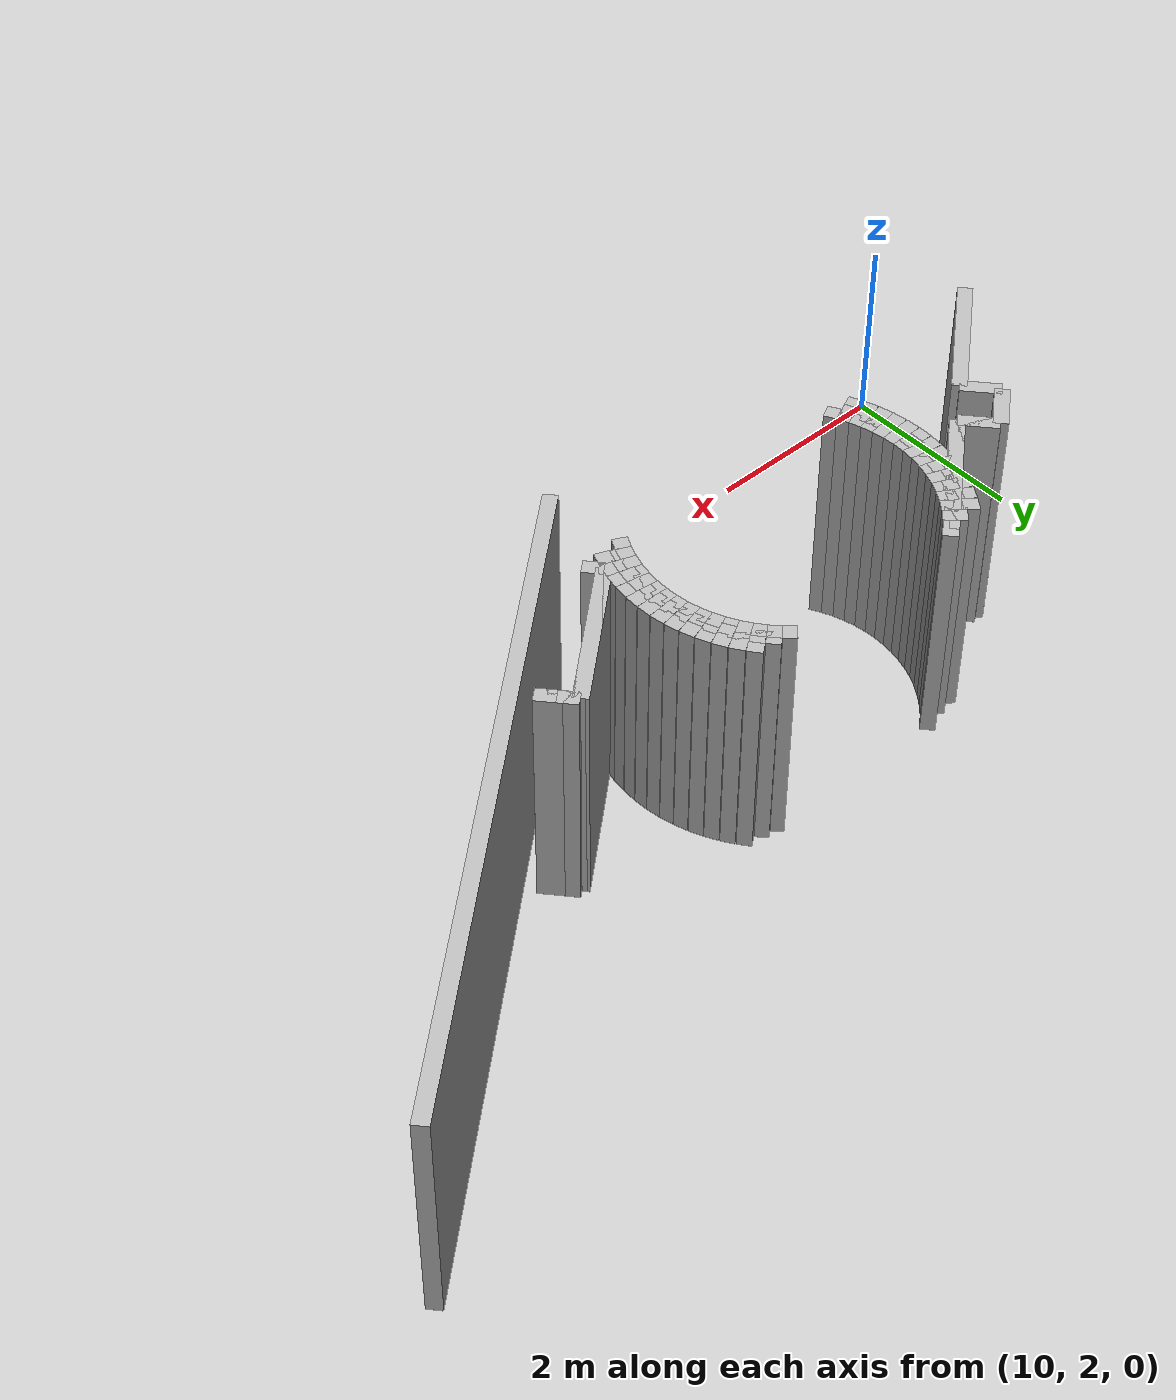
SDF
<sdf version="1.6">
 <model name="sps_1000">
  <static>1</static>
  <allow_auto_disable>0</allow_auto_disable>
  <link name="Wall468">
   <collision name="collision"><geometry><box><size>0.400191 0.15 2.5</size></box></geometry></collision>
   <visual name="visual">
    <geometry><box><size>0.400191 0.15 2.5</size></box></geometry>
    <transparency>0.0</transparency>
   </visual>
   <pose>11.2367 4.51289 1.25 0 -0 2.28042</pose>
  </link>
  <link name="Wall761">
   <collision name="collision"><geometry><box><size>0.499785 0.15 2.5</size></box></geometry></collision>
   <visual name="visual">
    <geometry><box><size>0.499785 0.15 2.5</size></box></geometry>
    <transparency>0.0</transparency>
   </visual>
   <pose>11.2959 4.8275 1.25 0 -0 0.709593</pose>
  </link>
  <link name="Wall1087">
   <collision name="collision"><geometry><box><size>1.60021 0.15 2.5</size></box></geometry></collision>
   <visual name="visual">
    <geometry><box><size>1.60021 0.15 2.5</size></box></geometry>
    <transparency>0.0</transparency>
   </visual>
   <pose>16.1283 4.49721 1.25 0 -0 0.709917</pose>
  </link>
  <link name="Wall1980">
   <collision name="collision"><geometry><box><size>1.50006 0.15 2.5</size></box></geometry></collision>
   <visual name="visual">
    <geometry><box><size>1.50006 0.15 2.5</size></box></geometry>
    <transparency>0.0</transparency>
   </visual>
   <pose>10.7981 3.87248 1.25 0 -0 0.709831</pose>
  </link>
  <link name="Wall2314">
   <collision name="collision"><geometry><box><size>0.399933 0.15 2.5</size></box></geometry></collision>
   <visual name="visual">
    <geometry><box><size>0.399933 0.15 2.5</size></box></geometry>
    <transparency>0.0</transparency>
   </visual>
   <pose>11.616 4.83861 1.25 0 -0 2.28037</pose>
  </link>
  <link name="Wall7676">
   <collision name="collision"><geometry><box><size>1.49994 0.15 2.5</size></box></geometry></collision>
   <visual name="visual">
    <geometry><box><size>1.49994 0.15 2.5</size></box></geometry>
    <transparency>0.0</transparency>
   </visual>
   <pose>10.7981 3.87239 1.25 0 -0 0.709739</pose>
  </link>
  <link name="Wall7677">
   <collision name="collision"><geometry><box><size>0.400191 0.15 2.5</size></box></geometry></collision>
   <visual name="visual">
    <geometry><box><size>0.400191 0.15 2.5</size></box></geometry>
    <transparency>0.0</transparency>
   </visual>
   <pose>11.2367 4.51289 1.25 0 -0 2.28042</pose>
  </link>
  <link name="Wall7678">
   <collision name="collision"><geometry><box><size>0.49997 0.15 2.5</size></box></geometry></collision>
   <visual name="visual">
    <geometry><box><size>0.49997 0.15 2.5</size></box></geometry>
    <transparency>0.0</transparency>
   </visual>
   <pose>11.296 4.8275 1.25 0 -0 0.709275</pose>
  </link>
  <link name="Wall7679">
   <collision name="collision"><geometry><box><size>0.399794 0.15 2.5</size></box></geometry></collision>
   <visual name="visual">
    <geometry><box><size>0.399794 0.15 2.5</size></box></geometry>
    <transparency>0.0</transparency>
   </visual>
   <pose>11.616 4.8387 1.25 0 0 -0.860928</pose>
  </link>
  <link name="Wall7680">
   <collision name="collision"><geometry><box><size>1.60011 0.15 2.5</size></box></geometry></collision>
   <visual name="visual">
    <geometry><box><size>1.60011 0.15 2.5</size></box></geometry>
    <transparency>0.0</transparency>
   </visual>
   <pose>12.353 5.2086 1.25 0 -0 0.710021</pose>
  </link>
  <link name="Wall7695">
   <collision name="collision"><geometry><box><size>0.399489 0.15 2.5</size></box></geometry></collision>
   <visual name="visual">
    <geometry><box><size>0.399489 0.15 2.5</size></box></geometry>
    <transparency>0.0</transparency>
   </visual>
   <pose>16.8653 4.8672 1.25 0 -0 2.28072</pose>
  </link>
  <link name="Wall7696">
   <collision name="collision"><geometry><box><size>1.60023 0.15 2.5</size></box></geometry></collision>
   <visual name="visual">
    <geometry><box><size>1.60023 0.15 2.5</size></box></geometry>
    <transparency>0.0</transparency>
   </visual>
   <pose>16.1282 4.4973 1.25 0 0 -2.43184</pose>
  </link>
  <link name="Wall9813">
   <collision name="collision"><geometry><box><size>0.130763 0.15 2.5</size></box></geometry></collision>
   <visual name="visual">
    <geometry><box><size>0.130763 0.15 2.5</size></box></geometry>
    <transparency>0.0</transparency>
   </visual>
   <pose>14.8736 5.63148 1.25 0 0 -0.742148</pose>
  </link>
  <link name="Wall9814">
   <collision name="collision"><geometry><box><size>0.130984 0.15 2.5</size></box></geometry></collision>
   <visual name="visual">
    <geometry><box><size>0.130984 0.15 2.5</size></box></geometry>
    <transparency>0.0</transparency>
   </visual>
   <pose>14.9661 5.53899 1.25 0 0 -0.829565</pose>
  </link>
  <link name="Wall9815">
   <collision name="collision"><geometry><box><size>0.130881 0.15 2.5</size></box></geometry></collision>
   <visual name="visual">
    <geometry><box><size>0.130881 0.15 2.5</size></box></geometry>
    <transparency>0.0</transparency>
   </visual>
   <pose>15.0502 5.4388 1.25 0 0 -0.915357</pose>
  </link>
  <link name="Wall9816">
   <collision name="collision"><geometry><box><size>0.130834 0.15 2.5</size></box></geometry></collision>
   <visual name="visual">
    <geometry><box><size>0.130834 0.15 2.5</size></box></geometry>
    <transparency>0.0</transparency>
   </visual>
   <pose>15.1251 5.33171 1.25 0 0 -1.00453</pose>
  </link>
  <link name="Wall9817">
   <collision name="collision"><geometry><box><size>0.130819 0.15 2.5</size></box></geometry></collision>
   <visual name="visual">
    <geometry><box><size>0.130819 0.15 2.5</size></box></geometry>
    <transparency>0.0</transparency>
   </visual>
   <pose>15.1905 5.21849 1.25 0 0 -1.09066</pose>
  </link>
  <link name="Wall9818">
   <collision name="collision"><geometry><box><size>0.130893 0.15 2.5</size></box></geometry></collision>
   <visual name="visual">
    <geometry><box><size>0.130893 0.15 2.5</size></box></geometry>
    <transparency>0.0</transparency>
   </visual>
   <pose>15.2457 5.09999 1.25 0 0 -1.17895</pose>
  </link>
  <link name="Wall9819">
   <collision name="collision"><geometry><box><size>0.130896 0.15 2.5</size></box></geometry></collision>
   <visual name="visual">
    <geometry><box><size>0.130896 0.15 2.5</size></box></geometry>
    <transparency>0.0</transparency>
   </visual>
   <pose>15.2904 4.9771 1.25 0 0 -1.26482</pose>
  </link>
  <link name="Wall9820">
   <collision name="collision"><geometry><box><size>0.130881 0.15 2.5</size></box></geometry></collision>
   <visual name="visual">
    <geometry><box><size>0.130881 0.15 2.5</size></box></geometry>
    <transparency>0.0</transparency>
   </visual>
   <pose>15.3242 4.85078 1.25 0 0 -1.35364</pose>
  </link>
  <link name="Wall9821">
   <collision name="collision"><geometry><box><size>0.130865 0.15 2.5</size></box></geometry></collision>
   <visual name="visual">
    <geometry><box><size>0.130865 0.15 2.5</size></box></geometry>
    <transparency>0.0</transparency>
   </visual>
   <pose>15.3468 4.722 1.25 0 0 -1.44077</pose>
  </link>
  <link name="Wall9822">
   <collision name="collision"><geometry><box><size>0.130744 0.15 2.5</size></box></geometry></collision>
   <visual name="visual">
    <geometry><box><size>0.130744 0.15 2.5</size></box></geometry>
    <transparency>0.0</transparency>
   </visual>
   <pose>15.3581 4.59181 1.25 0 0 -1.52643</pose>
  </link>
  <link name="Wall9823">
   <collision name="collision"><geometry><box><size>0.130927 0.15 2.5</size></box></geometry></collision>
   <visual name="visual">
    <geometry><box><size>0.130927 0.15 2.5</size></box></geometry>
    <transparency>0.0</transparency>
   </visual>
   <pose>15.3581 4.4611 1.25 0 0 -1.6151</pose>
  </link>
  <link name="Wall9824">
   <collision name="collision"><geometry><box><size>0.130776 0.15 2.5</size></box></geometry></collision>
   <visual name="visual">
    <geometry><box><size>0.130776 0.15 2.5</size></box></geometry>
    <transparency>0.0</transparency>
   </visual>
   <pose>15.3466 4.33089 1.25 0 0 -1.70279</pose>
  </link>
  <link name="Wall9825">
   <collision name="collision"><geometry><box><size>0.13106 0.15 2.5</size></box></geometry></collision>
   <visual name="visual">
    <geometry><box><size>0.13106 0.15 2.5</size></box></geometry>
    <transparency>0.0</transparency>
   </visual>
   <pose>15.3239 4.20207 1.25 0 0 -1.78765</pose>
  </link>
  <link name="Wall9826">
   <collision name="collision"><geometry><box><size>0.130701 0.15 2.5</size></box></geometry></collision>
   <visual name="visual">
    <geometry><box><size>0.130701 0.15 2.5</size></box></geometry>
    <transparency>0.0</transparency>
   </visual>
   <pose>15.2901 4.07579 1.25 0 0 -1.87822</pose>
  </link>
  <link name="Wall9827">
   <collision name="collision"><geometry><box><size>0.130973 0.15 2.5</size></box></geometry></collision>
   <visual name="visual">
    <geometry><box><size>0.130973 0.15 2.5</size></box></geometry>
    <transparency>0.0</transparency>
   </visual>
   <pose>15.2453 3.95299 1.25 0 0 -1.9629</pose>
  </link>
  <link name="Wall9828">
   <collision name="collision"><geometry><box><size>0.130737 0.15 2.5</size></box></geometry></collision>
   <visual name="visual">
    <geometry><box><size>0.130737 0.15 2.5</size></box></geometry>
    <transparency>0.0</transparency>
   </visual>
   <pose>15.1901 3.83449 1.25 0 0 -2.05073</pose>
  </link>
  <link name="Wall9853">
   <collision name="collision"><geometry><box><size>0.130765 0.15 2.5</size></box></geometry></collision>
   <visual name="visual">
    <geometry><box><size>0.130765 0.15 2.5</size></box></geometry>
    <transparency>0.0</transparency>
   </visual>
   <pose>12.5315 3.83528 1.25 0 -0 2.05114</pose>
  </link>
  <link name="Wall9854">
   <collision name="collision"><geometry><box><size>0.130949 0.15 2.5</size></box></geometry></collision>
   <visual name="visual">
    <geometry><box><size>0.130949 0.15 2.5</size></box></geometry>
    <transparency>0.0</transparency>
   </visual>
   <pose>12.4762 3.95378 1.25 0 -0 1.96247</pose>
  </link>
  <link name="Wall9855">
   <collision name="collision"><geometry><box><size>0.130896 0.15 2.5</size></box></geometry></collision>
   <visual name="visual">
    <geometry><box><size>0.130896 0.15 2.5</size></box></geometry>
    <transparency>0.0</transparency>
   </visual>
   <pose>12.4315 4.0767 1.25 0 -0 1.87677</pose>
  </link>
  <link name="Wall9856">
   <collision name="collision"><geometry><box><size>0.130881 0.15 2.5</size></box></geometry></collision>
   <visual name="visual">
    <geometry><box><size>0.130881 0.15 2.5</size></box></geometry>
    <transparency>0.0</transparency>
   </visual>
   <pose>12.3977 4.20302 1.25 0 -0 1.78795</pose>
  </link>
  <link name="Wall9857">
   <collision name="collision"><geometry><box><size>0.130708 0.15 2.5</size></box></geometry></collision>
   <visual name="visual">
    <geometry><box><size>0.130708 0.15 2.5</size></box></geometry>
    <transparency>0.0</transparency>
   </visual>
   <pose>12.3751 4.33171 1.25 0 -0 1.70239</pose>
  </link>
  <link name="Wall9858">
   <collision name="collision"><geometry><box><size>0.130919 0.15 2.5</size></box></geometry></collision>
   <visual name="visual">
    <geometry><box><size>0.130919 0.15 2.5</size></box></geometry>
    <transparency>0.0</transparency>
   </visual>
   <pose>12.3637 4.4619 1.25 0 -0 1.6137</pose>
  </link>
  <link name="Wall9859">
   <collision name="collision"><geometry><box><size>0.130927 0.15 2.5</size></box></geometry></collision>
   <visual name="visual">
    <geometry><box><size>0.130927 0.15 2.5</size></box></geometry>
    <transparency>0.0</transparency>
   </visual>
   <pose>12.3638 4.5927 1.25 0 -0 1.52649</pose>
  </link>
  <link name="Wall9860">
   <collision name="collision"><geometry><box><size>0.130684 0.15 2.5</size></box></geometry></collision>
   <visual name="visual">
    <geometry><box><size>0.130684 0.15 2.5</size></box></geometry>
    <transparency>0.0</transparency>
   </visual>
   <pose>12.3751 4.72288 1.25 0 -0 1.44059</pose>
  </link>
  <link name="Wall9861">
   <collision name="collision"><geometry><box><size>0.130934 0.15 2.5</size></box></geometry></collision>
   <visual name="visual">
    <geometry><box><size>0.130934 0.15 2.5</size></box></geometry>
    <transparency>0.0</transparency>
   </visual>
   <pose>12.3978 4.85158 1.25 0 -0 1.35182</pose>
  </link>
  <link name="Wall9862">
   <collision name="collision"><geometry><box><size>0.130878 0.15 2.5</size></box></geometry></collision>
   <visual name="visual">
    <geometry><box><size>0.130878 0.15 2.5</size></box></geometry>
    <transparency>0.0</transparency>
   </visual>
   <pose>12.4318 4.97789 1.25 0 -0 1.26527</pose>
  </link>
  <link name="Wall9863">
   <collision name="collision"><geometry><box><size>0.130986 0.15 2.5</size></box></geometry></collision>
   <visual name="visual">
    <geometry><box><size>0.130986 0.15 2.5</size></box></geometry>
    <transparency>0.0</transparency>
   </visual>
   <pose>12.4766 5.10078 1.25 0 -0 1.17722</pose>
  </link>
  <link name="Wall9864">
   <collision name="collision"><geometry><box><size>0.130791 0.15 2.5</size></box></geometry></collision>
   <visual name="visual">
    <geometry><box><size>0.130791 0.15 2.5</size></box></geometry>
    <transparency>0.0</transparency>
   </visual>
   <pose>12.5319 5.21928 1.25 0 -0 1.09108</pose>
  </link>
  <link name="Wall9865">
   <collision name="collision"><geometry><box><size>0.130966 0.15 2.5</size></box></geometry></collision>
   <visual name="visual">
    <geometry><box><size>0.130966 0.15 2.5</size></box></geometry>
    <transparency>0.0</transparency>
   </visual>
   <pose>12.5973 5.3325 1.25 0 -0 1.00296</pose>
  </link>
  <link name="Wall9866">
   <collision name="collision"><geometry><box><size>0.130769 0.15 2.5</size></box></geometry></collision>
   <visual name="visual">
    <geometry><box><size>0.130769 0.15 2.5</size></box></geometry>
    <transparency>0.0</transparency>
   </visual>
   <pose>12.6723 5.43959 1.25 0 -0 0.916467</pose>
  </link>
  <link name="Wall9867">
   <collision name="collision"><geometry><box><size>0.130808 0.15 2.5</size></box></geometry></collision>
   <visual name="visual">
    <geometry><box><size>0.130808 0.15 2.5</size></box></geometry>
    <transparency>0.0</transparency>
   </visual>
   <pose>12.7562 5.53969 1.25 0 -0 0.828964</pose>
  </link>
  <link name="Wall15297">
   <collision name="collision"><geometry><box><size>0.137845 0.15 2.5</size></box></geometry></collision>
   <visual name="visual">
    <geometry><box><size>0.137845 0.15 2.5</size></box></geometry>
    <transparency>0.0</transparency>
   </visual>
   <pose>15.0253 5.59309 1.25 0 0 -0.828305</pose>
  </link>
  <link name="Wall15298">
   <collision name="collision"><geometry><box><size>0.137836 0.15 2.5</size></box></geometry></collision>
   <visual name="visual">
    <geometry><box><size>0.137836 0.15 2.5</size></box></geometry>
    <transparency>0.0</transparency>
   </visual>
   <pose>15.1138 5.48759 1.25 0 0 -0.917288</pose>
  </link>
  <link name="Wall15299">
   <collision name="collision"><geometry><box><size>0.137912 0.15 2.5</size></box></geometry></collision>
   <visual name="visual">
    <geometry><box><size>0.137912 0.15 2.5</size></box></geometry>
    <transparency>0.0</transparency>
   </visual>
   <pose>15.1926 5.37468 1.25 0 0 -1.00464</pose>
  </link>
  <link name="Wall15300">
   <collision name="collision"><geometry><box><size>0.137753 0.15 2.5</size></box></geometry></collision>
   <visual name="visual">
    <geometry><box><size>0.137753 0.15 2.5</size></box></geometry>
    <transparency>0.0</transparency>
   </visual>
   <pose>15.2614 5.25539 1.25 0 0 -1.0909</pose>
  </link>
  <link name="Wall15301">
   <collision name="collision"><geometry><box><size>0.137888 0.15 2.5</size></box></geometry></collision>
   <visual name="visual">
    <geometry><box><size>0.137888 0.15 2.5</size></box></geometry>
    <transparency>0.0</transparency>
   </visual>
   <pose>15.3196 5.1306 1.25 0 0 -1.17788</pose>
  </link>
  <link name="Wall15302">
   <collision name="collision"><geometry><box><size>0.137789 0.15 2.5</size></box></geometry></collision>
   <visual name="visual">
    <geometry><box><size>0.137789 0.15 2.5</size></box></geometry>
    <transparency>0.0</transparency>
   </visual>
   <pose>15.3668 5.0012 1.25 0 0 -1.2653</pose>
  </link>
  <link name="Wall15303">
   <collision name="collision"><geometry><box><size>0.137839 0.15 2.5</size></box></geometry></collision>
   <visual name="visual">
    <geometry><box><size>0.137839 0.15 2.5</size></box></geometry>
    <transparency>0.0</transparency>
   </visual>
   <pose>15.4024 4.86821 1.25 0 0 -1.35299</pose>
  </link>
  <link name="Wall15304">
   <collision name="collision"><geometry><box><size>0.13802 0.15 2.5</size></box></geometry></collision>
   <visual name="visual">
    <geometry><box><size>0.13802 0.15 2.5</size></box></geometry>
    <transparency>0.0</transparency>
   </visual>
   <pose>15.4263 4.7325 1.25 0 0 -1.43997</pose>
  </link>
  <link name="Wall15305">
   <collision name="collision"><geometry><box><size>0.137703 0.15 2.5</size></box></geometry></collision>
   <visual name="visual">
    <geometry><box><size>0.137703 0.15 2.5</size></box></geometry>
    <transparency>0.0</transparency>
   </visual>
   <pose>15.4383 4.59529 1.25 0 0 -1.52735</pose>
  </link>
  <link name="Wall15306">
   <collision name="collision"><geometry><box><size>0.137955 0.15 2.5</size></box></geometry></collision>
   <visual name="visual">
    <geometry><box><size>0.137955 0.15 2.5</size></box></geometry>
    <transparency>0.0</transparency>
   </visual>
   <pose>15.4382 4.45759 1.25 0 0 -1.6155</pose>
  </link>
  <link name="Wall15307">
   <collision name="collision"><geometry><box><size>0.137778 0.15 2.5</size></box></geometry></collision>
   <visual name="visual">
    <geometry><box><size>0.137778 0.15 2.5</size></box></geometry>
    <transparency>0.0</transparency>
   </visual>
   <pose>15.4261 4.32039 1.25 0 0 -1.70185</pose>
  </link>
  <link name="Wall15308">
   <collision name="collision"><geometry><box><size>0.137852 0.15 2.5</size></box></geometry></collision>
   <visual name="visual">
    <geometry><box><size>0.137852 0.15 2.5</size></box></geometry>
    <transparency>0.0</transparency>
   </visual>
   <pose>15.4022 4.1848 1.25 0 0 -1.78903</pose>
  </link>
  <link name="Wall15309">
   <collision name="collision"><geometry><box><size>0.137826 0.15 2.5</size></box></geometry></collision>
   <visual name="visual">
    <geometry><box><size>0.137826 0.15 2.5</size></box></geometry>
    <transparency>0.0</transparency>
   </visual>
   <pose>15.3664 4.0518 1.25 0 0 -1.87714</pose>
  </link>
  <link name="Wall15310">
   <collision name="collision"><geometry><box><size>0.137888 0.15 2.5</size></box></geometry></collision>
   <visual name="visual">
    <geometry><box><size>0.137888 0.15 2.5</size></box></geometry>
    <transparency>0.0</transparency>
   </visual>
   <pose>15.3193 3.92241 1.25 0 0 -1.96371</pose>
  </link>
  <link name="Wall15337">
   <collision name="collision"><geometry><box><size>0.137888 0.15 2.5</size></box></geometry></collision>
   <visual name="visual">
    <geometry><box><size>0.137888 0.15 2.5</size></box></geometry>
    <transparency>0.0</transparency>
   </visual>
   <pose>12.4023 3.9232 1.25 0 -0 1.96371</pose>
  </link>
  <link name="Wall15338">
   <collision name="collision"><geometry><box><size>0.137789 0.15 2.5</size></box></geometry></collision>
   <visual name="visual">
    <geometry><box><size>0.137789 0.15 2.5</size></box></geometry>
    <transparency>0.0</transparency>
   </visual>
   <pose>12.3552 4.0526 1.25 0 -0 1.8763</pose>
  </link>
  <link name="Wall15339">
   <collision name="collision"><geometry><box><size>0.137839 0.15 2.5</size></box></geometry></collision>
   <visual name="visual">
    <geometry><box><size>0.137839 0.15 2.5</size></box></geometry>
    <transparency>0.0</transparency>
   </visual>
   <pose>12.3195 4.18559 1.25 0 -0 1.7886</pose>
  </link>
  <link name="Wall15340">
   <collision name="collision"><geometry><box><size>0.13796 0.15 2.5</size></box></geometry></collision>
   <visual name="visual">
    <geometry><box><size>0.13796 0.15 2.5</size></box></geometry>
    <transparency>0.0</transparency>
   </visual>
   <pose>12.2956 4.32127 1.25 0 -0 1.70168</pose>
  </link>
  <link name="Wall15341">
   <collision name="collision"><geometry><box><size>0.137756 0.15 2.5</size></box></geometry></collision>
   <visual name="visual">
    <geometry><box><size>0.137756 0.15 2.5</size></box></geometry>
    <transparency>0.0</transparency>
   </visual>
   <pose>12.2837 4.45848 1.25 0 -0 1.6129</pose>
  </link>
  <link name="Wall15342">
   <collision name="collision"><geometry><box><size>0.137947 0.15 2.5</size></box></geometry></collision>
   <visual name="visual">
    <geometry><box><size>0.137947 0.15 2.5</size></box></geometry>
    <transparency>0.0</transparency>
   </visual>
   <pose>12.2838 4.59621 1.25 0 -0 1.52742</pose>
  </link>
  <link name="Wall15343">
   <collision name="collision"><geometry><box><size>0.137778 0.15 2.5</size></box></geometry></collision>
   <visual name="visual">
    <geometry><box><size>0.137778 0.15 2.5</size></box></geometry>
    <transparency>0.0</transparency>
   </visual>
   <pose>12.2958 4.73341 1.25 0 -0 1.43974</pose>
  </link>
  <link name="Wall15344">
   <collision name="collision"><geometry><box><size>0.137852 0.15 2.5</size></box></geometry></collision>
   <visual name="visual">
    <geometry><box><size>0.137852 0.15 2.5</size></box></geometry>
    <transparency>0.0</transparency>
   </visual>
   <pose>12.3198 4.869 1.25 0 -0 1.35256</pose>
  </link>
  <link name="Wall15345">
   <collision name="collision"><geometry><box><size>0.138 0.15 2.5</size></box></geometry></collision>
   <visual name="visual">
    <geometry><box><size>0.138 0.15 2.5</size></box></geometry>
    <transparency>0.0</transparency>
   </visual>
   <pose>12.3555 5.00209 1.25 0 -0 1.26485</pose>
  </link>
  <link name="Wall15346">
   <collision name="collision"><geometry><box><size>0.137719 0.15 2.5</size></box></geometry></collision>
   <visual name="visual">
    <geometry><box><size>0.137719 0.15 2.5</size></box></geometry>
    <transparency>0.0</transparency>
   </visual>
   <pose>12.4026 5.13148 1.25 0 -0 1.17737</pose>
  </link>
  <link name="Wall15347">
   <collision name="collision"><geometry><box><size>0.137753 0.15 2.5</size></box></geometry></collision>
   <visual name="visual">
    <geometry><box><size>0.137753 0.15 2.5</size></box></geometry>
    <transparency>0.0</transparency>
   </visual>
   <pose>12.4608 5.25618 1.25 0 -0 1.0909</pose>
  </link>
  <link name="Wall15348">
   <collision name="collision"><geometry><box><size>0.138043 0.15 2.5</size></box></geometry></collision>
   <visual name="visual">
    <geometry><box><size>0.138043 0.15 2.5</size></box></geometry>
    <transparency>0.0</transparency>
   </visual>
   <pose>12.5297 5.37547 1.25 0 -0 1.00315</pose>
  </link>
  <link name="Wall15349">
   <collision name="collision"><geometry><box><size>0.137803 0.15 2.5</size></box></geometry></collision>
   <visual name="visual">
    <geometry><box><size>0.137803 0.15 2.5</size></box></geometry>
    <transparency>0.0</transparency>
   </visual>
   <pose>12.6088 5.4883 1.25 0 -0 0.915425</pose>
  </link>
  <link name="Wall15350">
   <collision name="collision"><geometry><box><size>0.137857 0.15 2.5</size></box></geometry></collision>
   <visual name="visual">
    <geometry><box><size>0.137857 0.15 2.5</size></box></geometry>
    <transparency>0.0</transparency>
   </visual>
   <pose>12.6973 5.59379 1.25 0 -0 0.830182</pose>
  </link>
  <link name="Wall15374">
   <collision name="collision"><geometry><box><size>6.95165 0.15 2.5</size></box></geometry></collision>
   <visual name="visual">
    <geometry><box><size>6.95165 0.15 2.5</size></box></geometry>
    <transparency>0.0</transparency>
   </visual>
   <pose>17.8659 5.19987 1.25 0 -0 0.709976</pose>
  </link>
  <link name="Wall21901">
   <collision name="collision"><geometry><box><size>0.14829 0.15 2.5</size></box></geometry></collision>
   <visual name="visual">
    <geometry><box><size>0.14829 0.15 2.5</size></box></geometry>
    <transparency>0.0</transparency>
   </visual>
   <pose>15.2089 5.5605 1.25 0 0 -0.915276</pose>
  </link>
  <link name="Wall21902">
   <collision name="collision"><geometry><box><size>0.148394 0.15 2.5</size></box></geometry></collision>
   <visual name="visual">
    <geometry><box><size>0.148394 0.15 2.5</size></box></geometry>
    <transparency>0.0</transparency>
   </visual>
   <pose>15.2938 5.4391 1.25 0 0 -1.0047</pose>
  </link>
  <link name="Wall21903">
   <collision name="collision"><geometry><box><size>0.148154 0.15 2.5</size></box></geometry></collision>
   <visual name="visual">
    <geometry><box><size>0.148154 0.15 2.5</size></box></geometry>
    <transparency>0.0</transparency>
   </visual>
   <pose>15.3679 5.31077 1.25 0 0 -1.09075</pose>
  </link>
  <link name="Wall21904">
   <collision name="collision"><geometry><box><size>0.148508 0.15 2.5</size></box></geometry></collision>
   <visual name="visual">
    <geometry><box><size>0.148508 0.15 2.5</size></box></geometry>
    <transparency>0.0</transparency>
   </visual>
   <pose>15.4305 5.17647 1.25 0 0 -1.17815</pose>
  </link>
  <link name="Wall21905">
   <collision name="collision"><geometry><box><size>0.148213 0.15 2.5</size></box></geometry></collision>
   <visual name="visual">
    <geometry><box><size>0.148213 0.15 2.5</size></box></geometry>
    <transparency>0.0</transparency>
   </visual>
   <pose>15.4812 5.03718 1.25 0 0 -1.26545</pose>
  </link>
  <link name="Wall21906">
   <collision name="collision"><geometry><box><size>0.148339 0.15 2.5</size></box></geometry></collision>
   <visual name="visual">
    <geometry><box><size>0.148339 0.15 2.5</size></box></geometry>
    <transparency>0.0</transparency>
   </visual>
   <pose>15.5195 4.89409 1.25 0 0 -1.35306</pose>
  </link>
  <link name="Wall21907">
   <collision name="collision"><geometry><box><size>0.148241 0.15 2.5</size></box></geometry></collision>
   <visual name="visual">
    <geometry><box><size>0.148241 0.15 2.5</size></box></geometry>
    <transparency>0.0</transparency>
   </visual>
   <pose>15.5452 4.74818 1.25 0 0 -1.4399</pose>
  </link>
  <link name="Wall21908">
   <collision name="collision"><geometry><box><size>0.148332 0.15 2.5</size></box></geometry></collision>
   <visual name="visual">
    <geometry><box><size>0.148332 0.15 2.5</size></box></geometry>
    <transparency>0.0</transparency>
   </visual>
   <pose>15.558 4.6006 1.25 0 0 -1.52758</pose>
  </link>
  <link name="Wall21909">
   <collision name="collision"><geometry><box><size>0.14834 0.15 2.5</size></box></geometry></collision>
   <visual name="visual">
    <geometry><box><size>0.14834 0.15 2.5</size></box></geometry>
    <transparency>0.0</transparency>
   </visual>
   <pose>15.5579 4.45241 1.25 0 0 -1.61525</pose>
  </link>
  <link name="Wall21910">
   <collision name="collision"><geometry><box><size>0.148309 0.15 2.5</size></box></geometry></collision>
   <visual name="visual">
    <geometry><box><size>0.148309 0.15 2.5</size></box></geometry>
    <transparency>0.0</transparency>
   </visual>
   <pose>15.5449 4.30479 1.25 0 0 -1.70204</pose>
  </link>
  <link name="Wall21911">
   <collision name="collision"><geometry><box><size>0.148484 0.15 2.5</size></box></geometry></collision>
   <visual name="visual">
    <geometry><box><size>0.148484 0.15 2.5</size></box></geometry>
    <transparency>0.0</transparency>
   </visual>
   <pose>15.5192 4.1588 1.25 0 0 -1.78915</pose>
  </link>
  <link name="Wall21912">
   <collision name="collision"><geometry><box><size>0.14829 0.15 2.5</size></box></geometry></collision>
   <visual name="visual">
    <geometry><box><size>0.14829 0.15 2.5</size></box></geometry>
    <transparency>0.0</transparency>
   </visual>
   <pose>15.4808 4.01561 1.25 0 0 -1.87641</pose>
  </link>
  <link name="Wall21913">
   <collision name="collision"><geometry><box><size>0.148339 0.15 2.5</size></box></geometry></collision>
   <visual name="visual">
    <geometry><box><size>0.148339 0.15 2.5</size></box></geometry>
    <transparency>0.0</transparency>
   </visual>
   <pose>15.43 3.87639 1.25 0 0 -1.96391</pose>
  </link>
  <link name="Wall21940">
   <collision name="collision"><geometry><box><size>0.148485 0.15 2.5</size></box></geometry></collision>
   <visual name="visual">
    <geometry><box><size>0.148485 0.15 2.5</size></box></geometry>
    <transparency>0.0</transparency>
   </visual>
   <pose>12.2915 3.87727 1.25 0 -0 1.96306</pose>
  </link>
  <link name="Wall21941">
   <collision name="collision"><geometry><box><size>0.148235 0.15 2.5</size></box></geometry></collision>
   <visual name="visual">
    <geometry><box><size>0.148235 0.15 2.5</size></box></geometry>
    <transparency>0.0</transparency>
   </visual>
   <pose>12.2409 4.01659 1.25 0 -0 1.87523</pose>
  </link>
  <link name="Wall21942">
   <collision name="collision"><geometry><box><size>0.148306 0.15 2.5</size></box></geometry></collision>
   <visual name="visual">
    <geometry><box><size>0.148306 0.15 2.5</size></box></geometry>
    <transparency>0.0</transparency>
   </visual>
   <pose>12.2026 4.15968 1.25 0 -0 1.78942</pose>
  </link>
  <link name="Wall21943">
   <collision name="collision"><geometry><box><size>0.148467 0.15 2.5</size></box></geometry></collision>
   <visual name="visual">
    <geometry><box><size>0.148467 0.15 2.5</size></box></geometry>
    <transparency>0.0</transparency>
   </visual>
   <pose>12.1769 4.30568 1.25 0 -0 1.70066</pose>
  </link>
  <link name="Wall21944">
   <collision name="collision"><geometry><box><size>0.148332 0.15 2.5</size></box></geometry></collision>
   <visual name="visual">
    <geometry><box><size>0.148332 0.15 2.5</size></box></geometry>
    <transparency>0.0</transparency>
   </visual>
   <pose>12.1641 4.45338 1.25 0 -0 1.61401</pose>
  </link>
  <link name="Wall21945">
   <collision name="collision"><geometry><box><size>0.148332 0.15 2.5</size></box></geometry></collision>
   <visual name="visual">
    <geometry><box><size>0.148332 0.15 2.5</size></box></geometry>
    <transparency>0.0</transparency>
   </visual>
   <pose>12.1641 4.60158 1.25 0 -0 1.52758</pose>
  </link>
  <link name="Wall21946">
   <collision name="collision"><geometry><box><size>0.148309 0.15 2.5</size></box></geometry></collision>
   <visual name="visual">
    <geometry><box><size>0.148309 0.15 2.5</size></box></geometry>
    <transparency>0.0</transparency>
   </visual>
   <pose>12.177 4.74919 1.25 0 -0 1.43955</pose>
  </link>
  <link name="Wall21947">
   <collision name="collision"><geometry><box><size>0.148306 0.15 2.5</size></box></geometry></collision>
   <visual name="visual">
    <geometry><box><size>0.148306 0.15 2.5</size></box></geometry>
    <transparency>0.0</transparency>
   </visual>
   <pose>12.2028 4.89509 1.25 0 -0 1.35217</pose>
  </link>
  <link name="Wall21948">
   <collision name="collision"><geometry><box><size>0.14829 0.15 2.5</size></box></geometry></collision>
   <visual name="visual">
    <geometry><box><size>0.14829 0.15 2.5</size></box></geometry>
    <transparency>0.0</transparency>
   </visual>
   <pose>12.2411 5.03819 1.25 0 -0 1.26519</pose>
  </link>
  <link name="Wall21949">
   <collision name="collision"><geometry><box><size>0.148283 0.15 2.5</size></box></geometry></collision>
   <visual name="visual">
    <geometry><box><size>0.148283 0.15 2.5</size></box></geometry>
    <transparency>0.0</transparency>
   </visual>
   <pose>12.2919 5.17738 1.25 0 -0 1.17753</pose>
  </link>
  <link name="Wall21950">
   <collision name="collision"><geometry><box><size>0.148455 0.15 2.5</size></box></geometry></collision>
   <visual name="visual">
    <geometry><box><size>0.148455 0.15 2.5</size></box></geometry>
    <transparency>0.0</transparency>
   </visual>
   <pose>12.3546 5.31169 1.25 0 -0 1.09042</pose>
  </link>
  <link name="Wall21951">
   <collision name="collision"><geometry><box><size>0.148188 0.15 2.5</size></box></geometry></collision>
   <visual name="visual">
    <geometry><box><size>0.148188 0.15 2.5</size></box></geometry>
    <transparency>0.0</transparency>
   </visual>
   <pose>12.4287 5.44002 1.25 0 -0 1.00381</pose>
  </link>
  <link name="Wall21952">
   <collision name="collision"><geometry><box><size>0.14829 0.15 2.5</size></box></geometry></collision>
   <visual name="visual">
    <geometry><box><size>0.14829 0.15 2.5</size></box></geometry>
    <transparency>0.0</transparency>
   </visual>
   <pose>12.5137 5.56129 1.25 0 -0 0.915276</pose>
  </link>
  <link name="Wall30872">
   <collision name="collision"><geometry><box><size>0.200095 0.15 2.5</size></box></geometry></collision>
   <visual name="visual">
    <geometry><box><size>0.200095 0.15 2.5</size></box></geometry>
    <transparency>0.0</transparency>
   </visual>
   <pose>15.5864 3.90001 1.25 0 -0 2.28042</pose>
  </link>
  <link name="Wall35036">
   <collision name="collision"><geometry><box><size>0.200095 0.15 2.5</size></box></geometry></collision>
   <visual name="visual">
    <geometry><box><size>0.200095 0.15 2.5</size></box></geometry>
    <transparency>0.0</transparency>
   </visual>
   <pose>16.9303 4.79137 1.25 0 -0 2.28042</pose>
  </link>
  <link name="Wall35037">
   <collision name="collision"><geometry><box><size>0.199903 0.15 2.5</size></box></geometry></collision>
   <visual name="visual">
    <geometry><box><size>0.199903 0.15 2.5</size></box></geometry>
    <transparency>0.0</transparency>
   </visual>
   <pose>16.8001 4.94319 1.25 0 -0 2.27883</pose>
  </link>
  <link name="Wall37837">
   <collision name="collision"><geometry><box><size>1.49953 0.15 2.5</size></box></geometry></collision>
   <visual name="visual">
    <geometry><box><size>1.49953 0.15 2.5</size></box></geometry>
    <transparency>0.0</transparency>
   </visual>
   <pose>12.3148 5.1758 1.25 0 -0 0.709977</pose>
  </link>
 </model>
</sdf>
